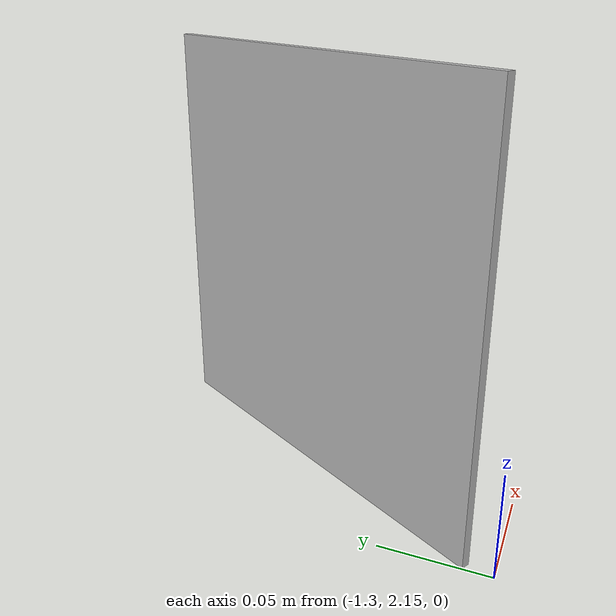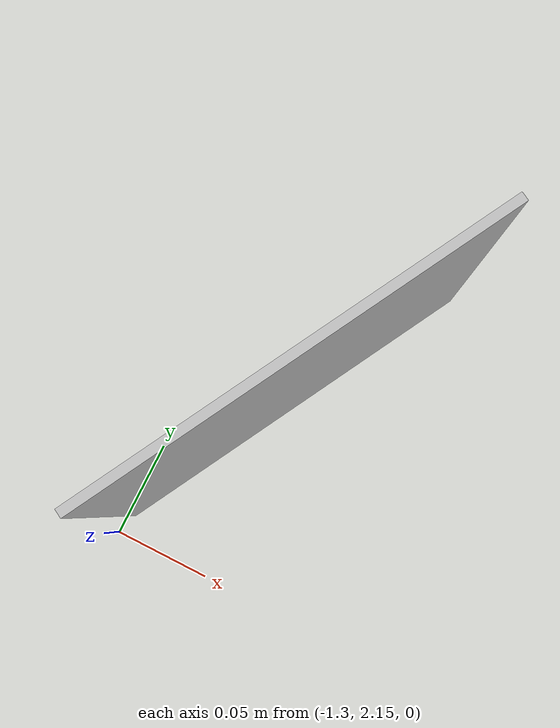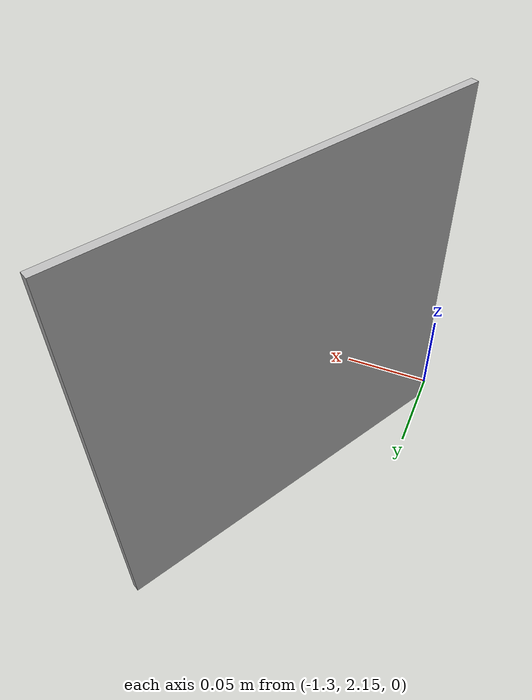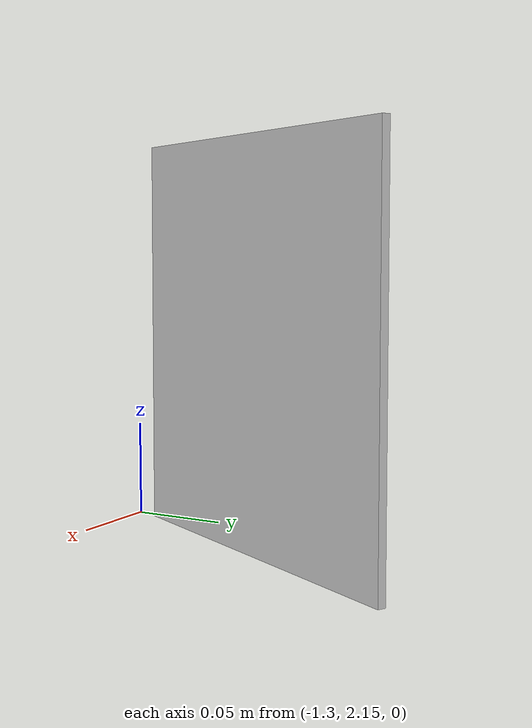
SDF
<?xml version="1.0" ?><sdf version="1.6">
  <model name="qr10">
    <static>true</static>
    <link name="link">
      <visual name="visual">
        <geometry>
          <mesh>
            <uri>model://qr10/meshes/qr10.dae</uri>
          <scale>0.4 0.4 0.4</scale></mesh>
        </geometry>
      </visual>
    </link>
    <pose>-1.25 2.25 0 0 -0 -0.5</pose>
  </model>
</sdf>
